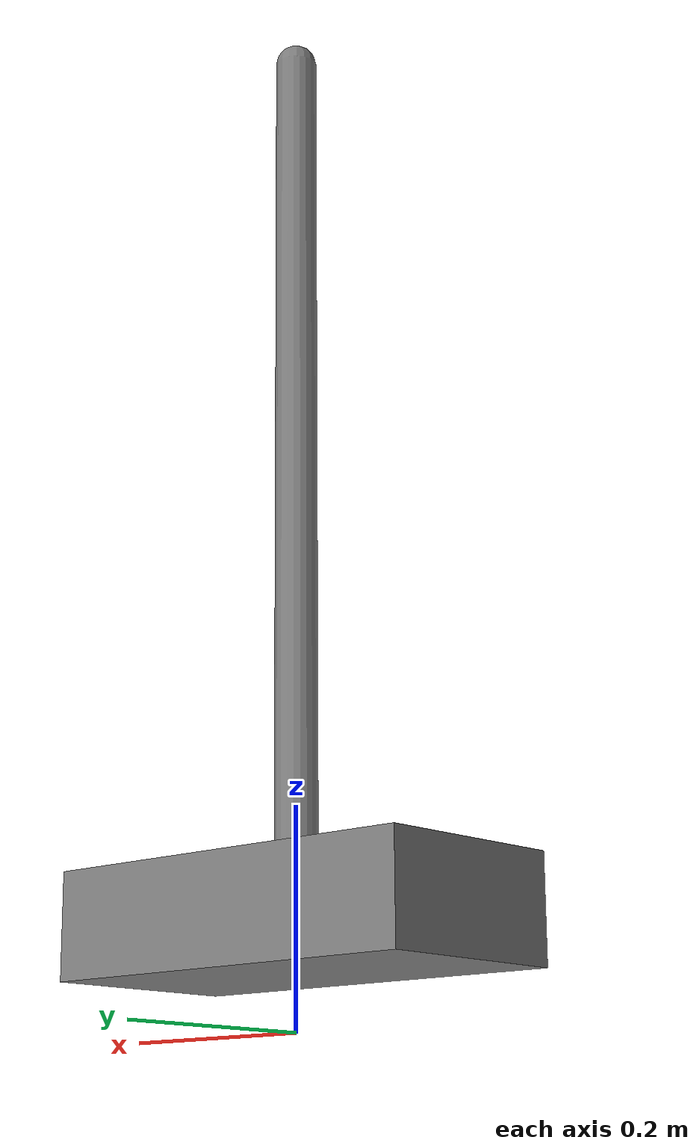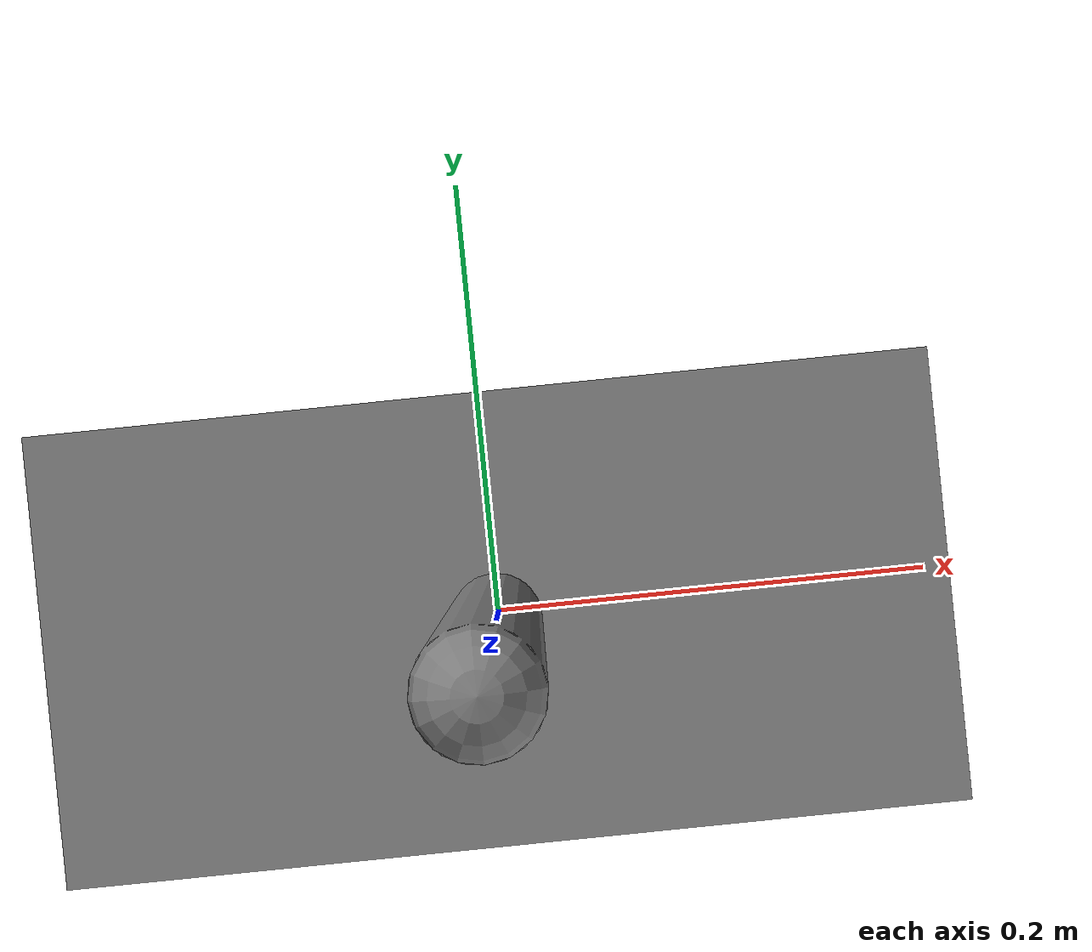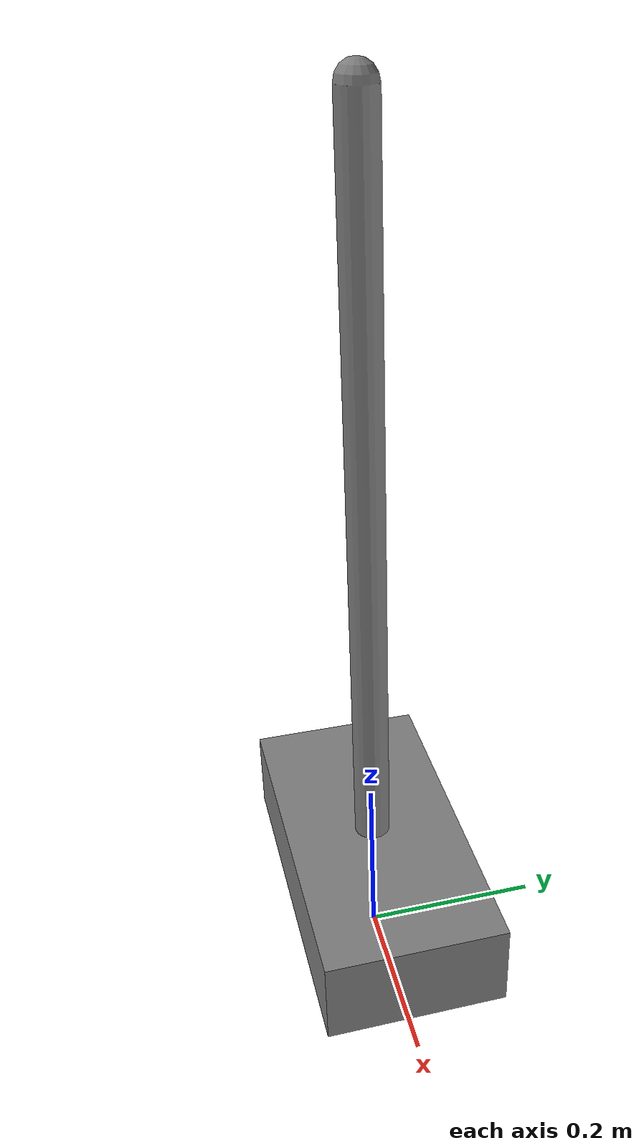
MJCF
<mujoco model="pole">
  <worldbody>
    <body name="cart" pos="0 0 0.1">
      <geom type="box" size="0.2 0.1 0.05"/>
      <body name="pole" pos="0 0 0.05">
        <joint name="hinge" type="hinge" axis="0 1 0" range="-90 90"/>
        <geom type="capsule" size="0.02" fromto="0 0 0 0 0 0.8"/>
      </body>
    </body>
  </worldbody>
  <actuator>
    <position name="hinge_ctrl" joint="hinge" kp="200" kv="200" ctrlrange="-1.57 1.57"/>
  </actuator>
</mujoco>
